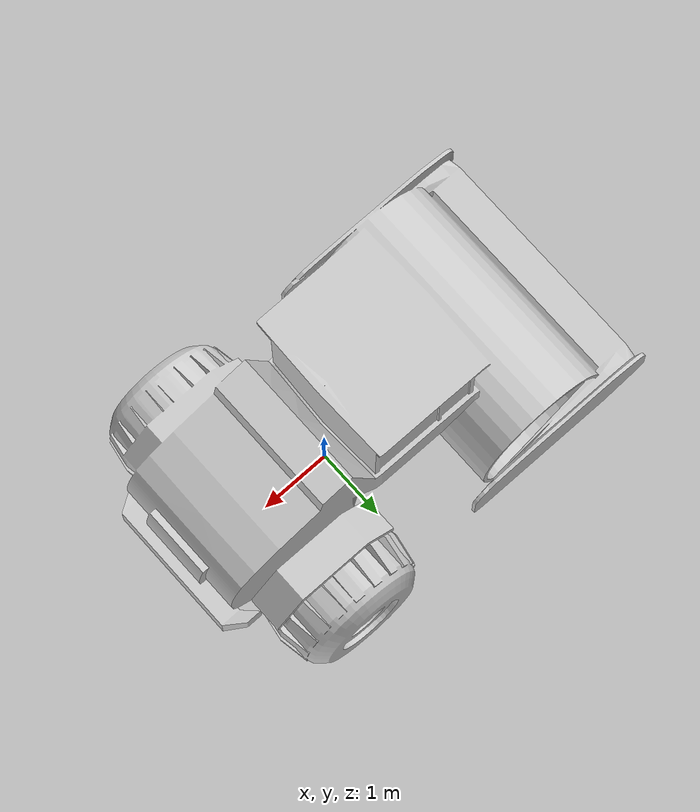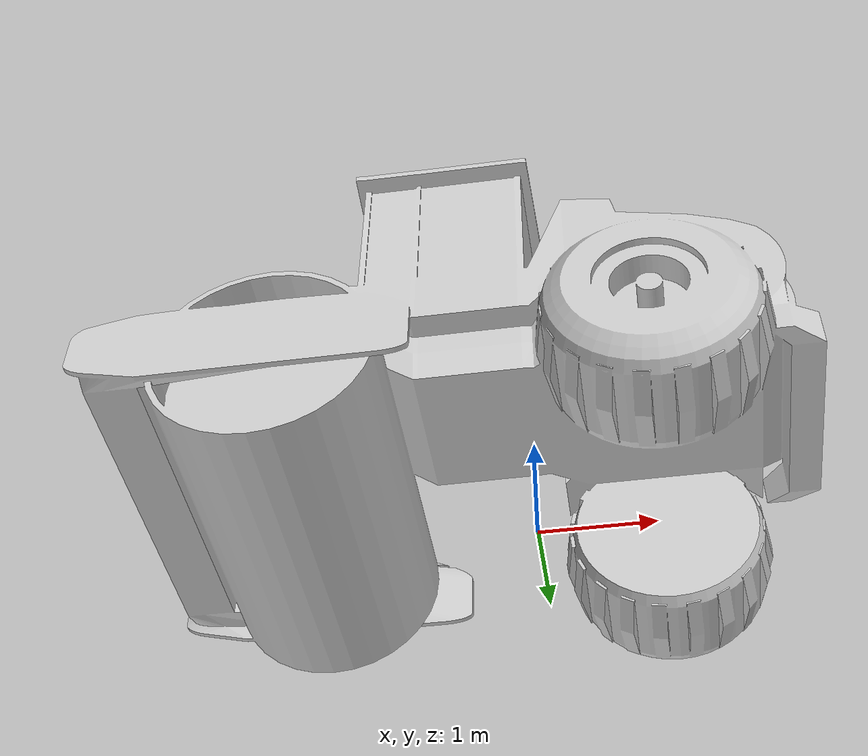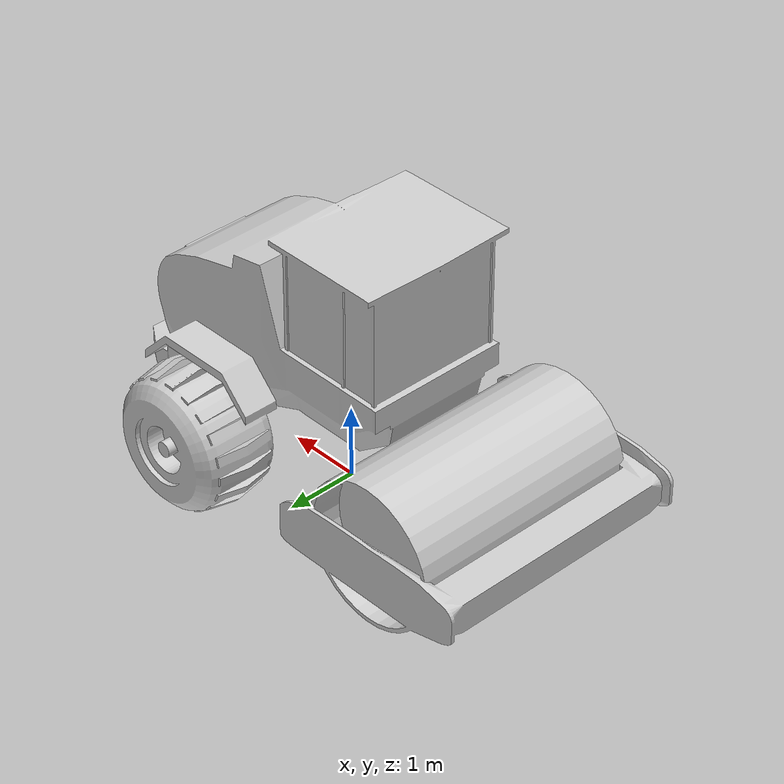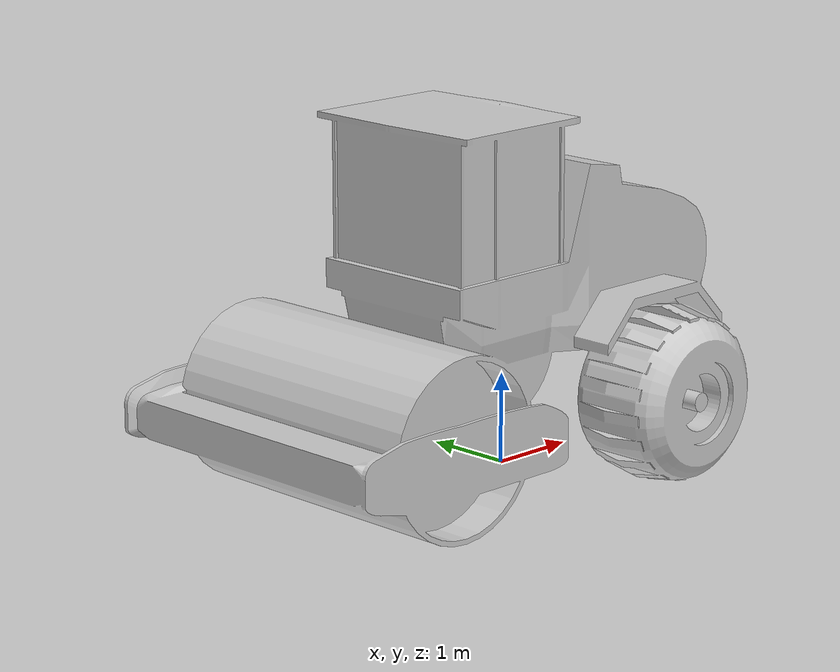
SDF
<?xml version="1.0" ?>
<sdf version="1.6">
  <model name="roadroller">
    <static>true</static>
    <link name="link">
      <collision name="collision">
        <pose>0 0 0 0 0 0</pose>
        <geometry>
          <mesh>
            <scale>0.5 0.5 0.5</scale>
            <uri>model://roadroller/meshes/roadroller.dae</uri>
          </mesh>
        </geometry>
      </collision>
      <visual name="visual">
        <pose>0 0 0 0 0 0</pose>
        <geometry>
          <mesh>
            <scale>0.5 0.5 0.5</scale>
            <uri>model://roadroller/meshes/roadroller.dae</uri>
          </mesh>
        </geometry>
      </visual>
    </link>
  </model>
</sdf>
